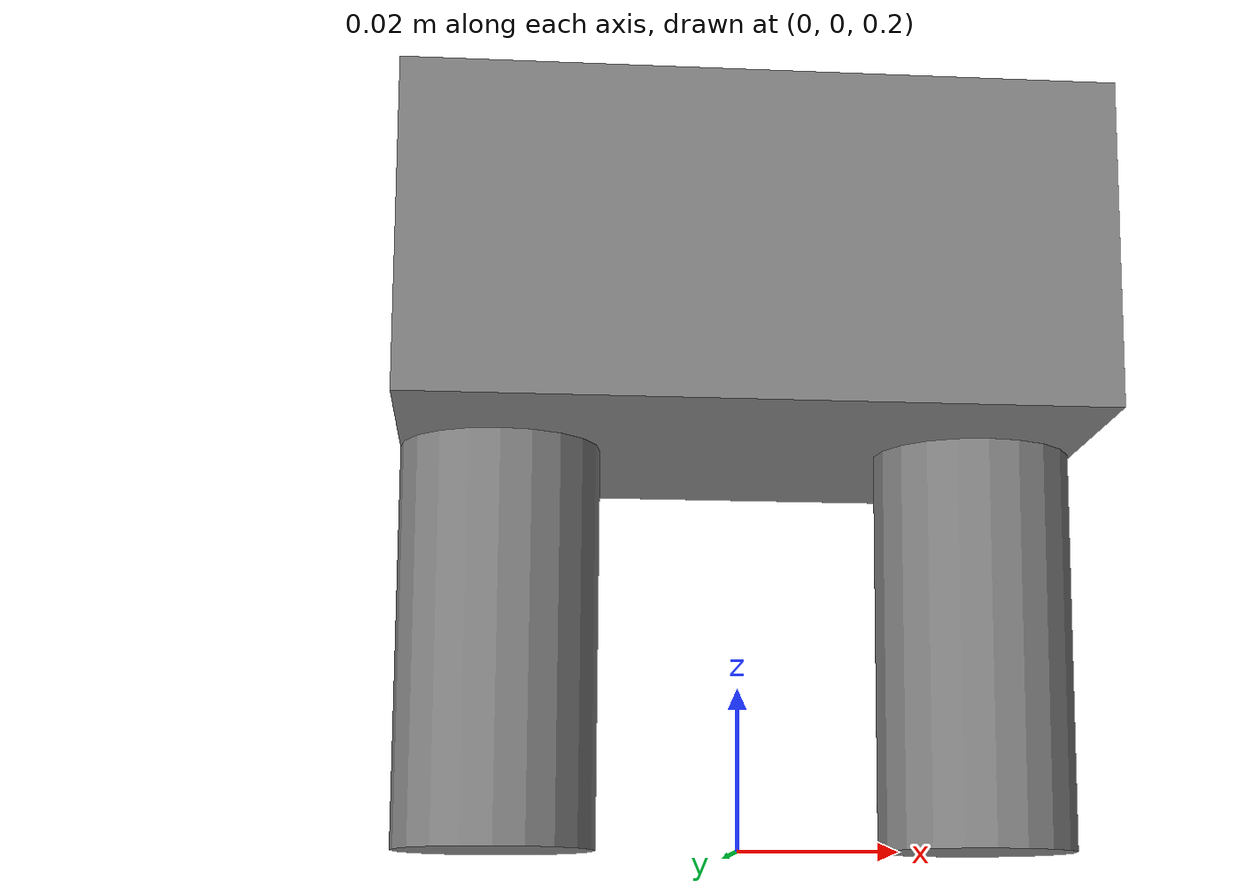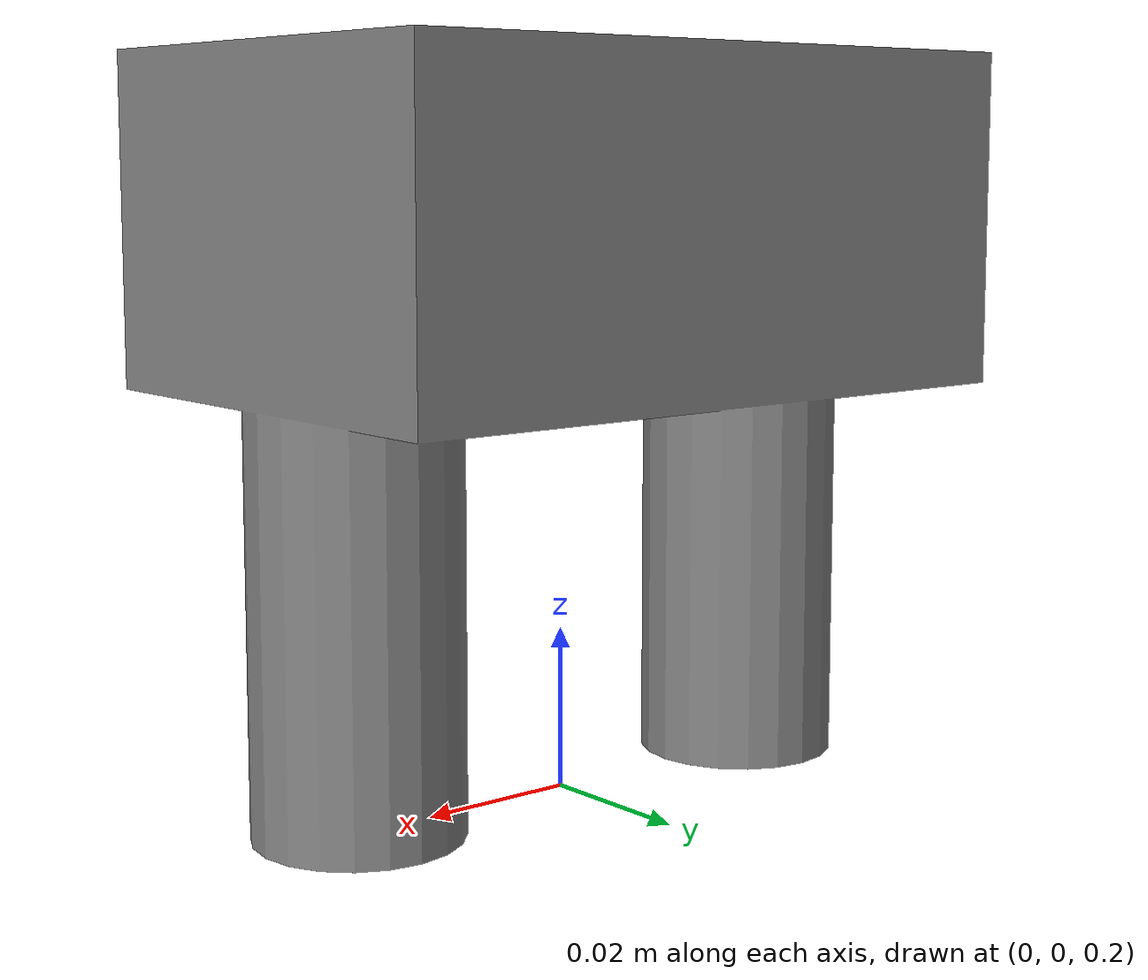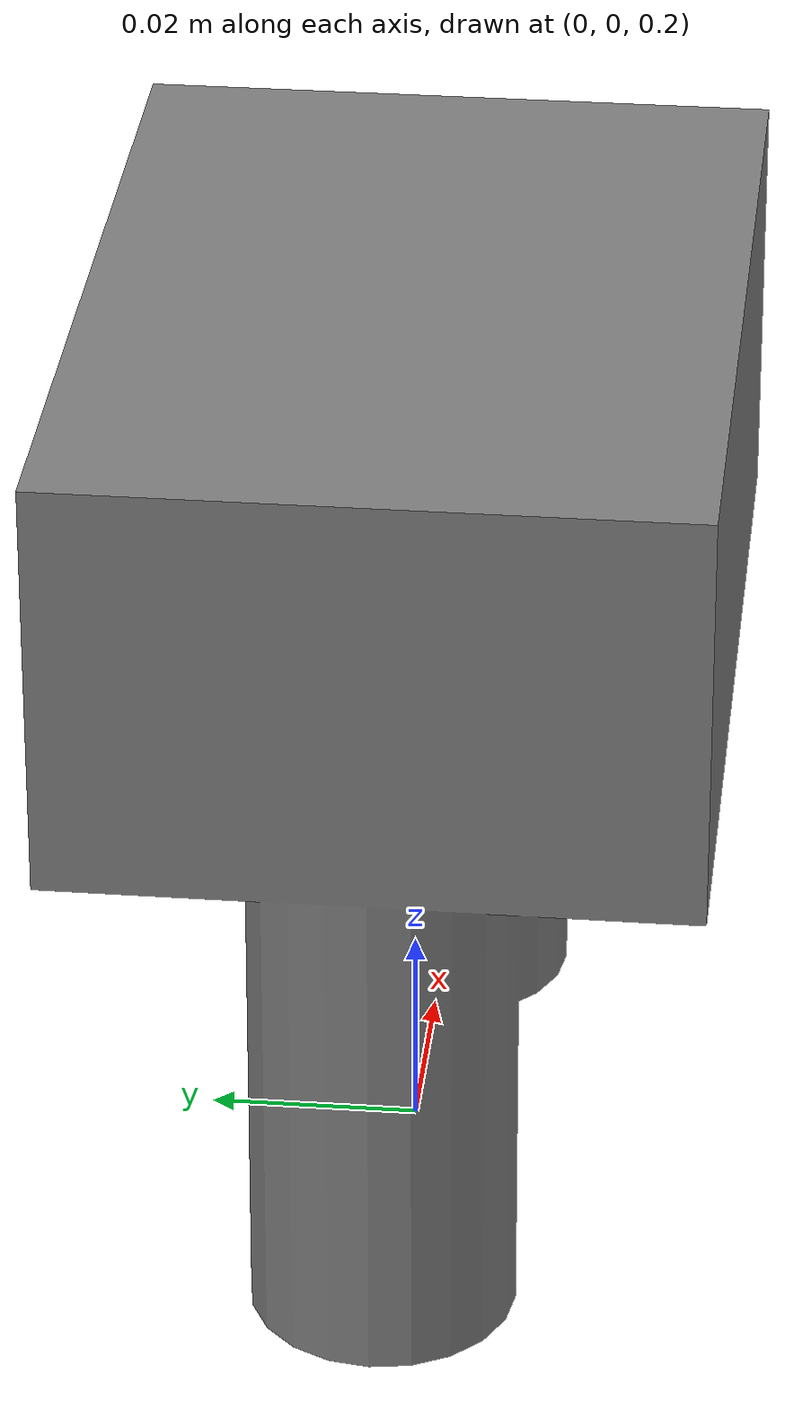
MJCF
<mujoco model="peg_circle">
  <asset>
    <mesh name="peg_circle" file="peg_circle.obj"/>
    <mesh name="peg_circle_collision_0" file="peg_circle_collision_0.obj"/>
    <mesh name="peg_circle_collision_1" file="peg_circle_collision_1.obj"/>
    <mesh name="peg_circle_collision_2" file="peg_circle_collision_2.obj"/>
    <mesh name="peg_circle_collision_3" file="peg_circle_collision_3.obj"/>
    <mesh name="peg_circle_collision_4" file="peg_circle_collision_4.obj"/>
    <mesh name="peg_circle_collision_5" file="peg_circle_collision_5.obj"/>
    <mesh name="peg_circle_collision_6" file="peg_circle_collision_6.obj"/>
    <mesh name="peg_circle_collision_7" file="peg_circle_collision_7.obj"/>
    <mesh name="peg_circle_collision_8" file="peg_circle_collision_8.obj"/>
    <mesh name="peg_circle_collision_9" file="peg_circle_collision_9.obj"/>
    <mesh name="peg_circle_collision_10" file="peg_circle_collision_10.obj"/>
    <mesh name="peg_circle_collision_11" file="peg_circle_collision_11.obj"/>
    <mesh name="peg_circle_collision_12" file="peg_circle_collision_12.obj"/>
    <mesh name="peg_circle_collision_13" file="peg_circle_collision_13.obj"/>
    <mesh name="peg_circle_collision_14" file="peg_circle_collision_14.obj"/>
    <mesh name="peg_circle_collision_15" file="peg_circle_collision_15.obj"/>
    <mesh name="peg_circle_collision_16" file="peg_circle_collision_16.obj"/>
    <mesh name="peg_circle_collision_17" file="peg_circle_collision_17.obj"/>
    <mesh name="peg_circle_collision_18" file="peg_circle_collision_18.obj"/>
    <mesh name="peg_circle_collision_19" file="peg_circle_collision_19.obj"/>
    <mesh name="peg_circle_collision_20" file="peg_circle_collision_20.obj"/>
    <mesh name="peg_circle_collision_21" file="peg_circle_collision_21.obj"/>
    <mesh name="peg_circle_collision_22" file="peg_circle_collision_22.obj"/>
    <mesh name="peg_circle_collision_23" file="peg_circle_collision_23.obj"/>
    <mesh name="peg_circle_collision_24" file="peg_circle_collision_24.obj"/>
    <mesh name="peg_circle_collision_25" file="peg_circle_collision_25.obj"/>
    <mesh name="peg_circle_collision_26" file="peg_circle_collision_26.obj"/>
    <mesh name="peg_circle_collision_27" file="peg_circle_collision_27.obj"/>
    <mesh name="peg_circle_collision_28" file="peg_circle_collision_28.obj"/>
    <mesh name="peg_circle_collision_29" file="peg_circle_collision_29.obj"/>
    <mesh name="peg_circle_collision_30" file="peg_circle_collision_30.obj"/>
  </asset>
  <worldbody>
    <body name="peg_circle" pos = '0 0 0.2'>
      <joint type='free'/>
      <geom quat="0.707107 0.707107 0 0" mesh="peg_circle" type="mesh" contype="0" conaffinity="0" group="2" density="100" friction="0 0 1"  condim="4" />
      <geom quat="0.707107 0.707107 0 0" mesh="peg_circle_collision_0" type="mesh" group="3"/>
      <geom quat="0.707107 0.707107 0 0" mesh="peg_circle_collision_1" type="mesh" group="3"/>
      <geom quat="0.707107 0.707107 0 0" mesh="peg_circle_collision_2" type="mesh" group="3"/>
      <geom quat="0.707107 0.707107 0 0" mesh="peg_circle_collision_3" type="mesh" group="3"/>
      <geom quat="0.707107 0.707107 0 0" mesh="peg_circle_collision_4" type="mesh" group="3"/>
      <geom quat="0.707107 0.707107 0 0" mesh="peg_circle_collision_5" type="mesh" group="3"/>
      <geom quat="0.707107 0.707107 0 0" mesh="peg_circle_collision_6" type="mesh" group="3"/>
      <geom quat="0.707107 0.707107 0 0" mesh="peg_circle_collision_7" type="mesh" group="3"/>
      <geom quat="0.707107 0.707107 0 0" mesh="peg_circle_collision_8" type="mesh" group="3"/>
      <geom quat="0.707107 0.707107 0 0" mesh="peg_circle_collision_9" type="mesh" group="3"/>
      <geom quat="0.707107 0.707107 0 0" mesh="peg_circle_collision_10" type="mesh" group="3"/>
      <geom quat="0.707107 0.707107 0 0" mesh="peg_circle_collision_11" type="mesh" group="3"/>
      <geom quat="0.707107 0.707107 0 0" mesh="peg_circle_collision_12" type="mesh" group="3"/>
      <geom quat="0.707107 0.707107 0 0" mesh="peg_circle_collision_13" type="mesh" group="3"/>
      <geom quat="0.707107 0.707107 0 0" mesh="peg_circle_collision_14" type="mesh" group="3"/>
      <geom quat="0.707107 0.707107 0 0" mesh="peg_circle_collision_15" type="mesh" group="3"/>
      <geom quat="0.707107 0.707107 0 0" mesh="peg_circle_collision_16" type="mesh" group="3"/>
      <geom quat="0.707107 0.707107 0 0" mesh="peg_circle_collision_17" type="mesh" group="3"/>
      <geom quat="0.707107 0.707107 0 0" mesh="peg_circle_collision_18" type="mesh" group="3"/>
      <geom quat="0.707107 0.707107 0 0" mesh="peg_circle_collision_19" type="mesh" group="3"/>
      <geom quat="0.707107 0.707107 0 0" mesh="peg_circle_collision_20" type="mesh" group="3"/>
      <geom quat="0.707107 0.707107 0 0" mesh="peg_circle_collision_21" type="mesh" group="3"/>
      <geom quat="0.707107 0.707107 0 0" mesh="peg_circle_collision_22" type="mesh" group="3"/>
      <geom quat="0.707107 0.707107 0 0" mesh="peg_circle_collision_23" type="mesh" group="3"/>
      <geom quat="0.707107 0.707107 0 0" mesh="peg_circle_collision_24" type="mesh" group="3"/>
      <geom quat="0.707107 0.707107 0 0" mesh="peg_circle_collision_25" type="mesh" group="3"/>
      <geom quat="0.707107 0.707107 0 0" mesh="peg_circle_collision_26" type="mesh" group="3"/>
      <geom quat="0.707107 0.707107 0 0" mesh="peg_circle_collision_27" type="mesh" group="3"/>
      <geom quat="0.707107 0.707107 0 0" mesh="peg_circle_collision_28" type="mesh" group="3"/>
      <geom quat="0.707107 0.707107 0 0" mesh="peg_circle_collision_29" type="mesh" group="3"/>
      <geom quat="0.707107 0.707107 0 0" mesh="peg_circle_collision_30" type="mesh" group="3"/>
    </body>
  </worldbody>
</mujoco>
